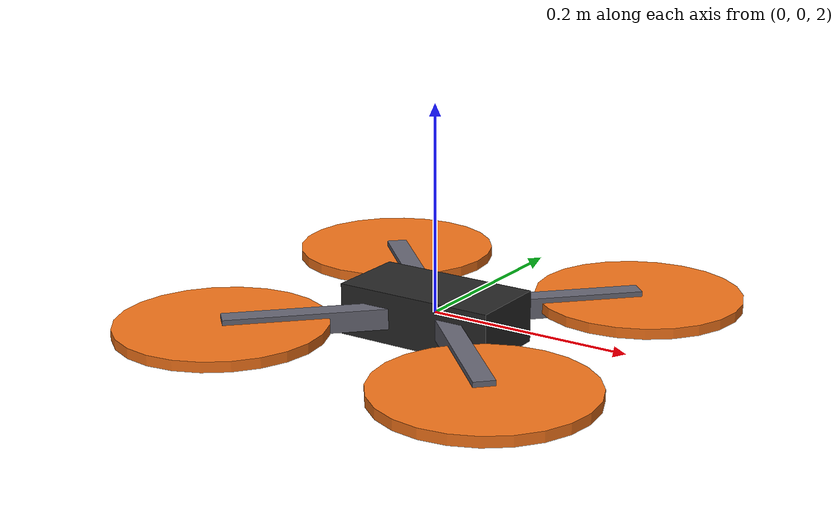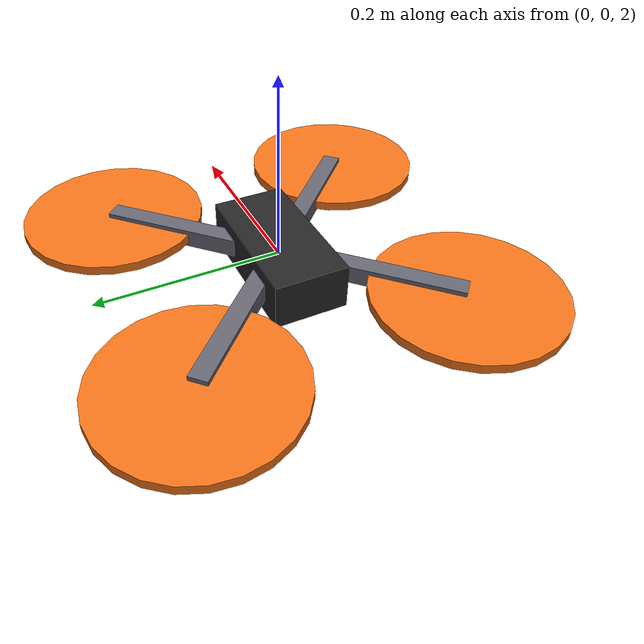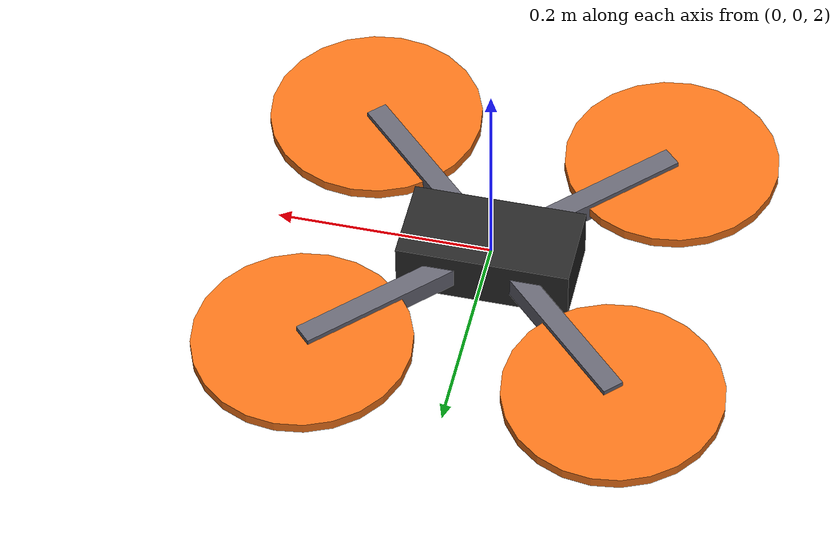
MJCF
<mujoco model="Quadrotor">
  <include file="scene.xml"/>
  <compiler angle="degree" coordinate="local" inertiafromgeom="false"/>

  <worldbody>
    <body name="quadrotor" pos="0.0 0.0 2.0" quat="1 0 0 0">
      <inertial pos="0. 0. 0." mass="0.75" diaginertia="0.0053 0.0049 0.0098"/>
      <joint name="quadrotor_root_joint" type="free"/>
      <!-- Body -->
      <geom name="quadrotor_geom" type="box" pos="0 0 0" size="0.08 0.04 0.025"
        mass="0.75" rgba="0.15 0.15 0.15 1"/>
      <!-- Arms -->
      <geom name="quadrotor_rotor_arm_geom_0" type="box" pos="0 0 0"
        quat="0.92388 0 0 0.382683" size="0.2 0.01 0.01" mass="0.01" rgba="0.4 0.4 0.45 1"/>
      <geom name="quadrotor_rotor_arm_geom_1" type="box" pos="0 0 0"
        quat="0.382683 0 0 0.92388" size="0.2 0.01 0.01" mass="0.01" rgba="0.4 0.4 0.45 1"/>
      <geom name="quadrotor_rotor_arm_geom_2" type="box" pos="0 0 0"
        quat="-0.382683 0 0 0.92388" size="0.2 0.01 0.01" mass="0.01" rgba="0.4 0.4 0.45 1"/>
      <geom name="quadrotor_rotor_arm_geom_3" type="box" pos="0 0 0"
        quat="-0.92388 0 0 0.382683" size="0.2 0.01 0.01" mass="0.01" rgba="0.4 0.4 0.45 1"/>
      <!-- Propellers -->
      <geom name="quadrotor_rotor_prop_geom_0" type="cylinder" size="0.1 0.005"
        pos="0.14142 0.14142 0" mass="0.05" rgba="0.95 0.45 0.1 1"/>
      <geom name="quadrotor_rotor_prop_geom_1" type="cylinder" size="0.1 0.005"
        pos="-0.14142 0.14142 0" mass="0.05" rgba="0.95 0.45 0.1 1"/>
      <geom name="quadrotor_rotor_prop_geom_2" type="cylinder" size="0.1 0.005"
        pos="-0.14142 -0.14142 0" mass="0.05" rgba="0.95 0.45 0.1 1"/>
      <geom name="quadrotor_rotor_prop_geom_3" type="cylinder" size="0.1 0.005"
        pos="0.14142 -0.14142 0" mass="0.05" rgba="0.95 0.45 0.1 1"/>
      <!-- Actuator sites (invisible) -->
      <site name="site0" pos="0.14142 0.14142 0" size="0.005" rgba="0 0 0 0"/>
      <site name="site1" pos="-0.14142 0.14142 0" size="0.005" rgba="0 0 0 0"/>
      <site name="site2" pos="-0.14142 -0.14142 0" size="0.005" rgba="0 0 0 0"/>
      <site name="site3" pos="0.14142 -0.14142 0" size="0.005" rgba="0 0 0 0"/>
      <site name="quadrotor_thrust" pos="0 0 0" size="0.005" rgba="0 0 0 0"/>
      <site name="quadrotor_Mx" pos="0 0 0" size="0.005" rgba="0 0 0 0"/>
      <site name="quadrotor_My" pos="0 0 0" size="0.005" rgba="0 0 0 0"/>
      <site name="quadrotor_Mz" pos="0 0 0" size="0.005" rgba="0 0 0 0"/>
    </body>
  </worldbody>

  <actuator>
    <motor ctrllimited="true" site="site0" ctrlrange="0 10" gear="0 0 1 0 0 -0.025"/>
    <motor ctrllimited="true" site="site1" ctrlrange="0 10" gear="0 0 1 0 0  0.025"/>
    <motor ctrllimited="true" site="site2" ctrlrange="0 10" gear="0 0 1 0 0 -0.025"/>
    <motor ctrllimited="true" site="site3" ctrlrange="0 10" gear="0 0 1 0 0  0.025"/>
    <motor ctrllimited="true" site="quadrotor_thrust" ctrlrange="0 40" gear="0 0 1 0 0 0"/>
    <motor ctrllimited="true" site="quadrotor_Mx" ctrlrange="-3 3" gear="0 0 0 1 0 0"/>
    <motor ctrllimited="true" site="quadrotor_My" ctrlrange="-3 3" gear="0 0 0 0 1 0"/>
    <motor ctrllimited="true" site="quadrotor_Mz" ctrlrange="-3 3" gear="0 0 0 0 0 1"/>
  </actuator>
</mujoco>

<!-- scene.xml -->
<mujoco>
  <compiler meshdir="asset" texturedir="asset"/>

  <statistic meansize=".05"/>

  <visual>
    <rgba haze="0.15 0.25 0.35 1"/>
    <quality shadowsize="4096"/>
    <map stiffness="700" shadowscale="0.5" fogstart="3" fogend="20" zfar="40" haze="0.3"/>
    <global offwidth="1920" offheight="1080"/>
  </visual>

  <asset>
    <texture type="skybox" builtin="gradient" rgb1="0.6 0.75 0.9" rgb2="0.15 0.2 0.3" width="512" height="512"/>
    <texture name="texplane" type="2d" builtin="checker" rgb1=".25 .28 .3" rgb2=".18 .2 .22"
      width="512" height="512" mark="cross" markrgb=".5 .5 .5"/>
    <material name="matplane" reflectance="0.2" texture="texplane" texrepeat="10 10" texuniform="true"/>
  </asset>

  <worldbody>
    <light diffuse=".5 .5 .5" specular="0.15 0.15 0.15" pos="0 0 3.0" dir="0 0 -1" castshadow="false"/>
    <light directional="true" diffuse=".8 .8 .8" specular="0.25 0.25 0.25" pos="2 2 5" dir="-0.2 -0.2 -1"/>
    <geom name="ground" type="plane" size="0 0 1" pos="0 0 0" material="matplane" condim="1"/>
  </worldbody>
</mujoco>
